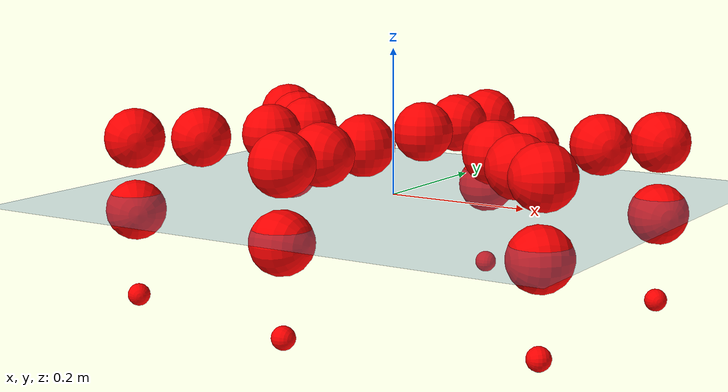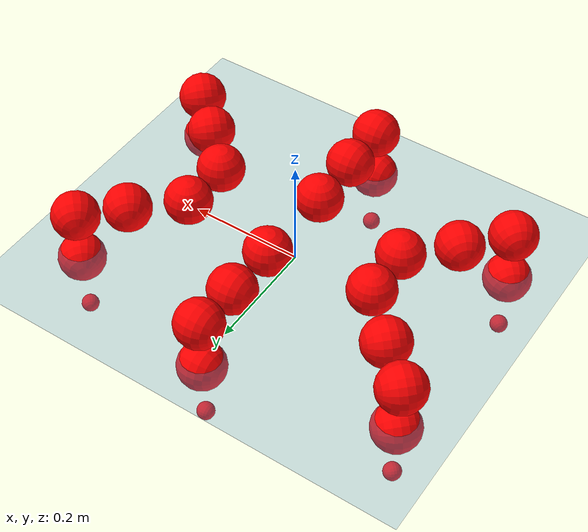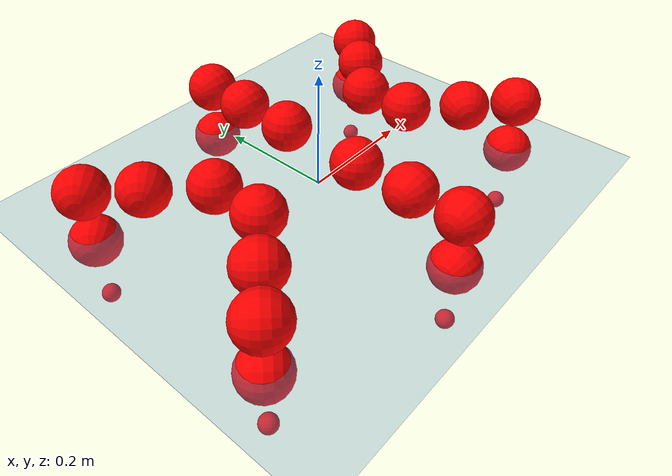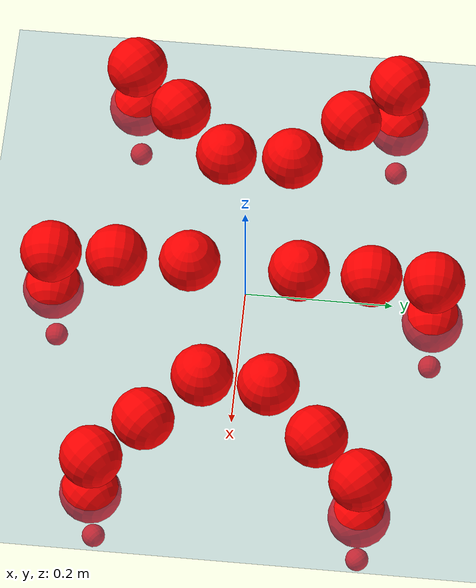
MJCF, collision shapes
<mujoco model="Golem">
  <compiler angle="radian" assetdir="assets" balanceinertia="true" inertiafromgeom="false"/>

  <option timestep="0.005" density="1.2" viscosity="2e-05"/>

  <size nkey="1"/>

  <visual>
    <quality shadowsize="8192"/>
    <map shadowclip="0.5"/>
  </visual>

  <default>
    <default class="/">
      <joint armature="0.01" damping="0.01" frictionloss="0.01"/>
      <geom contype="0" conaffinity="0" group="1" solref="-1000 -80"/>
      <site size="0.01 0.005 0.005" group="5"/>
      <general forcelimited="true" biastype="affine" gainprm="25" biasprm="0 -25 -0.5"/>
      <default class="visual">
        <geom type="mesh" group="2"/>
      </default>
      <default class="collision">
        <geom group="3"/>
      </default>
      <default class="foot">
        <geom size="0.01 0 0" condim="6" group="4" priority="1" solimp="0.015 1 0.01"/>
      </default>
      <default class="reward_collision_sphere">
        <geom group="5" rgba="1 0 0 1"/>
      </default>
    </default>
  </default>

  <asset>
    <texture type="skybox" colorspace="auto" name="//unnamed_texture_0" builtin="gradient" rgb1="0.95 0.95 0.95" rgb2="0.95 0.95 0.95" width="100" height="600"/>
    <texture type="2d" colorspace="auto" name="texplane" builtin="checker" rgb1="0.345 0.575 0.748" rgb2="0.345 0.575 0.748" markrgb="1 1 1" width="512" height="512"/>
    <material name="MatPlane" class="/" texture="texplane" texuniform="true" texrepeat="2 2" specular="0.9"/>
    <mesh name="body" class="/" file="body.stl" scale="0.001 0.001 0.001"/>
    <mesh name="coxa" class="/" file="coxa.stl" scale="0.001 0.001 0.001"/>
    <mesh name="femur" class="/" file="femur.stl" scale="0.001 0.001 0.001"/>
    <mesh name="tibia" class="/" file="tibia.stl" scale="0.001 0.001 0.001"/>
    <mesh name="tarsus" class="/" file="tarsus.stl" scale="0.001 0.001 0.001"/>
  </asset>

  <worldbody>
    <geom name="floor" class="/" size="100 100 0.125" type="plane" group="0" material="MatPlane"/>
    <light name="toplight_shadow" class="/" pos="0 0 5" dir="0.0990148 0.0990148 -0.990148" type="directional" ambient="0.04 0.04 0.04" diffuse="0.55 0.55 0.55" specular="0.12 0.12 0.12"/>
    <light name="toplight_fill" class="/" pos="0 0 5" dir="0.0990148 0.0990148 -0.990148" type="directional" castshadow="false" ambient="0.04 0.04 0.04" diffuse="0.3 0.3 0.3" specular="0.08 0.08 0.08"/>
    <body name="trunk" pos="0.00251644 0.0005847 0.000208939" quat="1 2.93596e-07 -3.37586e-05 -1.98366e-05">
      <inertial pos="-0.000603419 -0.0008184 -0.00186367" quat="0.999998 -0.00052493 -0.00102691 -0.00130902" mass="4.09084" diaginertia="0.0173083 0.00346044 0.0234034"/>
      <joint name="//unnamed_joint_0" type="free"/>
      <geom name="//unnamed_geom_1" class="/" pos="0 0 0.0759212" quat="1 0 0 0" type="mesh" rgba="0.9 0.9 0.9 1" mesh="body"/>
      <site name="imu" class="/" pos="0.157786 0.0111995 0.113408" size="0.0104095"/>
      <camera name="track" class="/" pos="0 -1.6268 0" quat="0.707107 0.707107 0 0" mode="trackcom"/>
      <camera name="ego_camera" class="/" pos="0.146012 0 0.118627" quat="-0.5 -0.5 0.5 0.5"/>
      <body name="coxa_RR" pos="-0.20041 -0.0670641 0.0751709" quat="0.382713 -0.000169662 -4.90544e-05 -0.923867">
        <inertial pos="0.000255835 -0.00254125 0.00102263" quat="0.999978 -0.00611622 -0.00193494 0.00193624" mass="0.216245" diaginertia="0.0174352 0.00346794 0.0227991"/>
        <joint name="coxa_joint_RR" class="/" pos="0 0 0" axis="-0.00329999 0.00460002 -0.999984" range="-3.14129 3.13384" armature="0.00943367" damping="0" frictionloss="0.0103461"/>
        <geom name="//unnamed_geom_2" class="/" type="mesh" rgba="0.2 0.2 0.2 1" mesh="coxa"/>
        <geom name="//unnamed_geom_3" class="reward_collision_sphere" size="0.0416378" pos="-0.0336951 0 0"/>
        <body name="femur_RR" pos="0.064376 0.000387926 -0.00190699" quat="0.50004 -0.499825 0.500148 0.499987">
          <inertial pos="0.000160703 0.000664518 -0.000126126" quat="0.999987 0.00167043 -9.4708e-05 -0.00485677" mass="0.224763" diaginertia="0.0178057 0.00349911 0.0241559"/>
          <joint name="femur_joint_RR" class="/" pos="0 0 0" axis="-5.52235e-05 0.00632919 -0.99998" range="-3.18366 3.11344" armature="0.0109453" damping="0.00466709" frictionloss="0.011459"/>
          <geom name="//unnamed_geom_4" class="/" type="mesh" rgba="0.9 0.9 0.9 1" mesh="femur"/>
          <geom name="//unnamed_geom_5" class="reward_collision_sphere" size="0.0416378"/>
          <body name="tibia_RR" pos="-0.00227808 -0.0908848 0.00297788" quat="0.000751591 0.999999 0.000548497 -0.000750949">
            <inertial pos="-0.00217791 0.00100093 -0.000514825" quat="0.999999 0.000775749 -0.00105873 0.000323283" mass="0.228667" diaginertia="0.0176761 0.00357844 0.0230665"/>
            <joint name="tibia_joint_RR" class="/" pos="0 0 0" axis="-0.00617983 -0.00686131 0.999957" range="-3.14741 3.15338" armature="0.0106664" damping="0.00187673" frictionloss="0.0103724"/>
            <geom name="//unnamed_geom_6" class="/" type="mesh" rgba="0.2 0.2 0.2 1" mesh="tibia"/>
            <geom name="//unnamed_geom_7" class="reward_collision_sphere" size="0.0416378"/>
            <body name="tarsus_RR" pos="0.0998852 0.000840044 0.00173998" quat="1 1.60752e-05 -7.80899e-06 -2.42875e-05">
              <inertial pos="0.0705175 0.000511856 -0.000261402" quat="0.501931 0.502012 0.500354 0.495677" mass="0.223872" diaginertia="0.0176276 0.00354514 0.0233643"/>
              <joint name="tarsus_joint_RR" class="/" pos="0 0 0" axis="0.000518606 -0.00054551 1" range="-3.18196 3.15756" armature="0.0109465" damping="0.0389451" frictionloss="0.0104944"/>
              <geom name="//unnamed_geom_8" class="/" type="mesh" rgba="0.9 0.9 0.9 1" mesh="tarsus"/>
              <geom name="foot_1" class="foot" size="0.0102976" pos="0.125795 0 0" quat="0 -0.707107 0 0.707107"/>
              <geom name="//unnamed_geom_10" class="reward_collision_sphere" size="0.0416378"/>
              <geom name="//unnamed_geom_11" class="reward_collision_sphere" size="0.0156142" pos="0.120741 0 0"/>
              <site name="foot_1" class="foot" pos="0.125795 0 0" quat="0 -0.707107 0 0.707107" size="0.0104095"/>
            </body>
          </body>
        </body>
      </body>
      <body name="coxa_RM" pos="-0.000762888 -0.109267 0.077181" quat="0.707141 -0.000464233 -5.70722e-05 -0.707072">
        <inertial pos="0.00160823 4.59758e-05 0.000904939" quat="0.999999 -0.000139527 0.000322883 0.00162552" mass="0.226215" diaginertia="0.0177927 0.00343683 0.023749"/>
        <joint name="coxa_joint_RM" class="/" pos="0 0 0" axis="-0.000171514 -0.0010372 -0.999999" range="-3.12323 3.12764" armature="0.0105736" damping="0.00253509" frictionloss="0.00905563"/>
        <geom name="//unnamed_geom_12" class="/" type="mesh" rgba="0.2 0.2 0.2 1" mesh="coxa"/>
        <geom name="//unnamed_geom_13" class="reward_collision_sphere" size="0.0416378" pos="-0.0336951 0 0"/>
        <body name="femur_RM" pos="0.0648774 0.00152843 0.00123766" quat="0.499898 -0.499404 0.499677 0.50102">
          <inertial pos="-0.000962507 0.000385082 -0.000198801" quat="0.99999 -0.000815776 0.000617175 -0.00432845" mass="0.231441" diaginertia="0.0184307 0.00358784 0.0241513"/>
          <joint name="femur_joint_RM" class="/" pos="0 0 0" axis="-0.00194562 0.00137172 -0.999997" range="-3.13191 3.13529" armature="0.0105126" damping="0.0165326" frictionloss="0.0104727"/>
          <geom name="//unnamed_geom_14" class="/" type="mesh" rgba="0.9 0.9 0.9 1" mesh="femur"/>
          <geom name="//unnamed_geom_15" class="reward_collision_sphere" size="0.0416378"/>
          <body name="tibia_RM" pos="-0.000393071 -0.0880644 0.00218775" quat="-0.00015199 1 -5.99833e-05 -8.02038e-05">
            <inertial pos="0.00124478 -0.00275294 0.000443302" quat="0.999934 0.00152194 -0.00855536 -0.00745418" mass="0.22163" diaginertia="0.0180802 0.00371416 0.0238674"/>
            <joint name="tibia_joint_RM" class="/" pos="0 0 0" axis="-0.000201255 -0.00321271 0.999995" range="-3.18577 3.19103" armature="0.0103908" damping="0.0158636" frictionloss="0.00990724"/>
            <geom name="//unnamed_geom_16" class="/" type="mesh" rgba="0.2 0.2 0.2 1" mesh="tibia"/>
            <geom name="//unnamed_geom_17" class="reward_collision_sphere" size="0.0416378"/>
            <body name="tarsus_RM" pos="0.097711 0.000577431 0.00147905" quat="1 2.83015e-06 -2.63016e-05 2.40754e-05">
              <inertial pos="0.066336 -0.000567168 0.00188557" quat="0.504286 0.494076 0.493353 0.508122" mass="0.233046" diaginertia="0.0173966 0.00353701 0.0229988"/>
              <joint name="tarsus_joint_RM" class="/" pos="0 0 0" axis="0.00151806 -0.00201102 0.999997" range="-3.12176 3.15916" armature="0.0101768" damping="0.00345165" frictionloss="0.0105703"/>
              <geom name="//unnamed_geom_18" class="/" type="mesh" rgba="0.9 0.9 0.9 1" mesh="tarsus"/>
              <geom name="foot_2" class="foot" size="0.0100269" pos="0.125795 0 0" quat="0 -0.707107 0 0.707107"/>
              <geom name="//unnamed_geom_20" class="reward_collision_sphere" size="0.0416378"/>
              <geom name="//unnamed_geom_21" class="reward_collision_sphere" size="0.0156142" pos="0.120741 0 0"/>
              <site name="foot_2" class="foot" pos="0.125795 0 0" quat="0 -0.707107 0 0.707107" size="0.0104095"/>
            </body>
          </body>
        </body>
      </body>
      <body name="coxa_RF" pos="0.199614 -0.0651013 0.0785865" quat="0.923875 8.28619e-06 -7.79966e-06 -0.382694">
        <inertial pos="0.00109043 0.000332869 0.000815642" quat="1 5.78901e-06 -0.000139632 1.96233e-05" mass="0.224528" diaginertia="0.017818 0.00350794 0.0235587"/>
        <joint name="coxa_joint_RF" class="/" pos="0 0 0" axis="0.00251 0.00283466 -0.999993" range="-3.12972 3.11808" armature="0.0114908" damping="0.00543279" frictionloss="0.0106857"/>
        <geom name="//unnamed_geom_22" class="/" type="mesh" rgba="0.2 0.2 0.2 1" mesh="coxa"/>
        <geom name="//unnamed_geom_23" class="reward_collision_sphere" size="0.0416378" pos="-0.0336951 0 0"/>
        <body name="femur_RF" pos="0.0667572 0.00080139 -0.00210769" quat="0.499691 -0.500245 0.500013 0.50005">
          <inertial pos="-0.000459181 -0.00112136 0.000647229" quat="0.999997 0.00219351 0.000737361 -0.00097543" mass="0.226188" diaginertia="0.0178733 0.00353811 0.024263"/>
          <joint name="femur_joint_RF" class="/" pos="0 0 0" axis="0.000250646 -0.000540259 -1" stiffness="0.000404087" range="-3.19075 3.11773" armature="0.00920094" damping="0.0106955" frictionloss="0.0113092"/>
          <geom name="//unnamed_geom_24" class="/" type="mesh" rgba="0.9 0.9 0.9 1" mesh="femur"/>
          <geom name="//unnamed_geom_25" class="reward_collision_sphere" size="0.0416378"/>
          <body name="tibia_RF" pos="-0.00235507 -0.0891981 0.00211407" quat="-0.000233829 1 0.000141483 0.000120528">
            <inertial pos="-0.00243337 -0.000386731 0.000912365" quat="1 -3.74124e-05 -8.4877e-05 7.09746e-05" mass="0.229791" diaginertia="0.0175447 0.00355663 0.0233903"/>
            <joint name="tibia_joint_RF" class="/" pos="0 0 0" axis="0.0106533 -0.00387242 0.999936" range="-3.11849 3.08683" armature="0.0108006" damping="0.0140427" frictionloss="0.0103459"/>
            <geom name="//unnamed_geom_26" class="/" type="mesh" rgba="0.2 0.2 0.2 1" mesh="tibia"/>
            <geom name="//unnamed_geom_27" class="reward_collision_sphere" size="0.0416378"/>
            <body name="tarsus_RF" pos="0.0969224 0.00214458 0.00259307" quat="0.999999 -0.000137258 0.00118617 -0.000465465">
              <inertial pos="0.0674476 -0.000771507 -6.58397e-05" quat="0.499383 0.501963 0.499809 0.49884" mass="0.225151" diaginertia="0.017768 0.00360495 0.0236943"/>
              <joint name="tarsus_joint_RF" class="/" pos="0 0 0" axis="0.00226831 -0.00696653 0.999973" range="-3.12593 3.15859" armature="0.0107427" damping="0.00511871" frictionloss="0.0104046"/>
              <geom name="//unnamed_geom_28" class="/" type="mesh" rgba="0.9 0.9 0.9 1" mesh="tarsus"/>
              <geom name="foot_3" class="foot" size="0.0109556" pos="0.125795 0 0" quat="0 -0.707107 0 0.707107"/>
              <geom name="//unnamed_geom_30" class="reward_collision_sphere" size="0.0416378"/>
              <geom name="//unnamed_geom_31" class="reward_collision_sphere" size="0.0156142" pos="0.120741 0 0"/>
              <site name="foot_3" class="foot" pos="0.125795 0 0" quat="0 -0.707107 0 0.707107" size="0.0104095"/>
            </body>
          </body>
        </body>
      </body>
      <body name="coxa_LR" pos="-0.202106 0.0707093 0.0752142" quat="0.382694 -5.10347e-05 -6.30709e-05 0.923875">
        <inertial pos="-0.00226677 -0.000364991 -0.00185373" quat="0.999917 0.00479451 -0.0119063 -0.000646512" mass="0.226254" diaginertia="0.0182657 0.00374211 0.0236136"/>
        <joint name="coxa_joint_LR" class="/" pos="0 0 0" axis="0.0142757 -0.00669067 -0.999876" stiffness="0.000809033" range="-3.11788 3.13656" armature="0.0101307" damping="0.0182791" frictionloss="0.00944164"/>
        <geom name="//unnamed_geom_32" class="/" type="mesh" rgba="0.2 0.2 0.2 1" mesh="coxa"/>
        <geom name="//unnamed_geom_33" class="reward_collision_sphere" size="0.0416378" pos="-0.0336951 0 0"/>
        <body name="femur_LR" pos="0.0694359 -0.00242199 -0.00280409" quat="0.500018 -0.50002 0.499976 0.499987">
          <inertial pos="0.000530012 0.000178382 -0.000553766" quat="0.999999 -0.00149467 0.000455321 -0.000347488" mass="0.225921" diaginertia="0.0178316 0.0036512 0.0233891"/>
          <joint name="femur_joint_LR" class="/" pos="0 0 0" axis="0.0012101 0.00456297 0.999989" range="-3.16081 3.12843" armature="0.00993843" damping="0.00972496" frictionloss="0.00905622"/>
          <geom name="//unnamed_geom_34" class="/" type="mesh" rgba="0.9 0.9 0.9 1" mesh="femur"/>
          <geom name="//unnamed_geom_35" class="reward_collision_sphere" size="0.0416378"/>
          <body name="tibia_LR" pos="-0.000645958 -0.088617 0.00117036" quat="0.000243268 0.999999 -0.000352515 0.00116313">
            <inertial pos="0.000217934 0.000756595 8.40382e-05" quat="0.999997 -0.00148254 -0.00100999 -0.001553" mass="0.222701" diaginertia="0.0179867 0.0036052 0.0234634"/>
            <joint name="tibia_joint_LR" class="/" pos="0 0 0" axis="-0.000235727 -0.0012006 -0.999999" range="-3.14147 3.10266" armature="0.0101972" damping="0.010552" frictionloss="0.0106644"/>
            <geom name="//unnamed_geom_36" class="/" type="mesh" rgba="0.2 0.2 0.2 1" mesh="tibia"/>
            <geom name="//unnamed_geom_37" class="reward_collision_sphere" size="0.0416378"/>
            <body name="tarsus_LR" pos="0.0978498 -0.000175403 0.00249646" quat="0.999999 0.000963289 0.000873618 -0.000201401">
              <inertial pos="0.0709265 0.000155058 -0.00243547" quat="0.499029 0.501042 0.499606 0.50032" mass="0.220258" diaginertia="0.0175916 0.00345224 0.0230561"/>
              <joint name="tarsus_joint_LR" class="/" pos="0 0 0" axis="0.00708239 0.00202569 -0.999973" stiffness="0.00113475" range="-3.18092 3.09766" armature="0.0105625" damping="0" frictionloss="0.00994488"/>
              <geom name="//unnamed_geom_38" class="/" type="mesh" rgba="0.9 0.9 0.9 1" mesh="tarsus"/>
              <geom name="foot_4" class="foot" size="0.0106311" pos="0.125795 0 0" quat="0.707107 0 -0.707107 0"/>
              <geom name="//unnamed_geom_40" class="reward_collision_sphere" size="0.0416378"/>
              <geom name="//unnamed_geom_41" class="reward_collision_sphere" size="0.0156142" pos="0.120741 0 0"/>
              <site name="foot_4" class="foot" pos="0.125795 0 0" quat="0.707107 0 -0.707107 0" size="0.0104095"/>
            </body>
          </body>
        </body>
      </body>
      <body name="coxa_LM" pos="0.00144805 0.10551 0.0775257" quat="0.707175 -8.02959e-05 4.62796e-05 0.707038">
        <inertial pos="-0.000819514 0.000821165 0.00082297" quat="0.999989 -0.00138891 0.00417599 0.00160323" mass="0.22781" diaginertia="0.0180112 0.00359643 0.0237143"/>
        <joint name="coxa_joint_LM" class="/" pos="0 0 0" axis="-0.0020586 -0.000952834 -0.999997" range="-3.09836 3.14899" armature="0.0102946" damping="0.00612939" frictionloss="0.0113613"/>
        <geom name="//unnamed_geom_42" class="/" type="mesh" rgba="0.2 0.2 0.2 1" mesh="coxa"/>
        <geom name="//unnamed_geom_43" class="reward_collision_sphere" size="0.0416378" pos="-0.0336951 0 0"/>
        <body name="femur_LM" pos="0.0638283 0.00039076 0.000952673" quat="0.500398 -0.500015 0.499821 0.499765">
          <inertial pos="-0.000264885 -0.00228169 0.00260574" quat="0.999922 0.00978443 -0.000723113 0.00779319" mass="0.222403" diaginertia="0.0176628 0.00339925 0.0229546"/>
          <joint name="femur_joint_LM" class="/" pos="0 0 0" axis="-0.0026172 0.0073074 0.99997" range="-3.13693 3.10172" armature="0.010637" damping="0.00516714" frictionloss="0.010338"/>
          <geom name="//unnamed_geom_44" class="/" type="mesh" rgba="0.9 0.9 0.9 1" mesh="femur"/>
          <geom name="//unnamed_geom_45" class="reward_collision_sphere" size="0.0416378"/>
          <body name="tibia_LM" pos="0.000712694 -0.0841913 -0.00170802" quat="0.000780141 0.999999 -0.00105764 0.000483062">
            <inertial pos="-0.000781789 -0.00337288 -0.000942713" quat="0.999987 0.004534 -0.000811403 -0.00225197" mass="0.228005" diaginertia="0.017667 0.00366433 0.0232172"/>
            <joint name="tibia_joint_LM" class="/" pos="0 0 0" axis="0.00466747 -0.00345235 -0.999983" range="-3.146 3.11912" armature="0.0115183" damping="0" frictionloss="0.0103139"/>
            <geom name="//unnamed_geom_46" class="/" type="mesh" rgba="0.2 0.2 0.2 1" mesh="tibia"/>
            <geom name="//unnamed_geom_47" class="reward_collision_sphere" size="0.0416378"/>
            <body name="tarsus_LM" pos="0.101665 0.000808318 0.000349933" quat="0.999999 -5.91149e-05 0.00130491 5.90988e-05">
              <inertial pos="0.0663536 0.000267386 -0.00011801" quat="0.499758 0.500039 0.500284 0.499919" mass="0.221397" diaginertia="0.017441 0.0034834 0.0231602"/>
              <joint name="tarsus_joint_LM" class="/" pos="0 0 0" axis="-0.00112999 -1.73457e-05 -0.999999" range="-3.087 3.11893" armature="0.0115884" damping="0" frictionloss="0.0100703"/>
              <geom name="//unnamed_geom_48" class="/" type="mesh" rgba="0.9 0.9 0.9 1" mesh="tarsus"/>
              <geom name="foot_5" class="foot" size="0.0102094" pos="0.125795 0 0" quat="0.707107 0 -0.707107 0"/>
              <geom name="//unnamed_geom_50" class="reward_collision_sphere" size="0.0416378"/>
              <geom name="//unnamed_geom_51" class="reward_collision_sphere" size="0.0156142" pos="0.120741 0 0"/>
              <site name="foot_5" class="foot" pos="0.125795 0 0" quat="0.707107 0 -0.707107 0" size="0.0104095"/>
            </body>
          </body>
        </body>
      </body>
      <body name="coxa_LF" pos="0.202439 0.0707622 0.0732759" quat="0.92388 -6.78701e-06 -7.93829e-06 0.382682">
        <inertial pos="-0.000188646 0.000599912 0.000926971" quat="0.999981 0.00138611 -0.000149824 -0.0060244" mass="0.217127" diaginertia="0.0174238 0.00343334 0.0228099"/>
        <joint name="coxa_joint_LF" class="/" pos="0 0 0" axis="0.00386619 -0.0020187 -0.99999" range="-3.13202 3.1898" armature="0.0115049" damping="0.00261119" frictionloss="0.00983213"/>
        <geom name="//unnamed_geom_52" class="/" type="mesh" rgba="0.2 0.2 0.2 1" mesh="coxa"/>
        <geom name="//unnamed_geom_53" class="reward_collision_sphere" size="0.0416378" pos="-0.0336951 0 0"/>
        <body name="femur_LF" pos="0.0672606 -0.00185638 0.000551803" quat="0.500839 -0.499539 0.499308 0.500313">
          <inertial pos="0.00254477 0.00036061 0.00051298" quat="0.999986 -0.000682313 -0.00350925 0.00383244" mass="0.230442" diaginertia="0.0181376 0.00361515 0.0235325"/>
          <joint name="femur_joint_LF" class="/" pos="0 0 0" axis="0.00029012 -0.00132891 0.999999" stiffness="0.000493787" range="-3.12349 3.1236" armature="0.0115681" damping="0.0138005" frictionloss="0.0109443"/>
          <geom name="//unnamed_geom_54" class="/" type="mesh" rgba="0.9 0.9 0.9 1" mesh="femur"/>
          <geom name="//unnamed_geom_55" class="reward_collision_sphere" size="0.0416378"/>
          <body name="tibia_LF" pos="0.000158157 -0.0859873 0.00194435" quat="-9.98665e-05 1 -6.28393e-05 -0.000288137">
            <inertial pos="0.00016011 0.00175632 -0.00046307" quat="0.999986 0.00347085 -0.00244543 -0.0031135" mass="0.226214" diaginertia="0.0181035 0.00357972 0.0235491"/>
            <joint name="tibia_joint_LF" class="/" pos="0 0 0" axis="-0.000372321 -0.00332685 -0.999994" range="-3.13633 3.14773" armature="0.00997121" damping="0" frictionloss="0.0104147"/>
            <geom name="//unnamed_geom_56" class="/" type="mesh" rgba="0.2 0.2 0.2 1" mesh="tibia"/>
            <geom name="//unnamed_geom_57" class="reward_collision_sphere" size="0.0416378"/>
            <body name="tarsus_LF" pos="0.0989522 0.000495639 -0.000194215" quat="0.999999 -0.000574439 -0.000780782 -0.000785732">
              <inertial pos="0.0696291 0.000918322 0.000200435" quat="0.501865 0.496121 0.497069 0.504894" mass="0.223209" diaginertia="0.0177469 0.00359473 0.0231701"/>
              <joint name="tarsus_joint_LF" class="/" pos="0 0 0" axis="-0.00102755 0.00127558 -0.999999" stiffness="0.0301875" range="-3.17226 3.13449" armature="0.0103633" damping="0.0306248" frictionloss="0.0101516"/>
              <geom name="//unnamed_geom_58" class="/" type="mesh" rgba="0.9 0.9 0.9 1" mesh="tarsus"/>
              <geom name="foot_6" class="foot" size="0.0105217" pos="0.125795 0 0" quat="0.707107 0 -0.707107 0"/>
              <geom name="//unnamed_geom_60" class="reward_collision_sphere" size="0.0416378"/>
              <geom name="//unnamed_geom_61" class="reward_collision_sphere" size="0.0156142" pos="0.120741 0 0"/>
              <site name="foot_6" class="foot" pos="0.125795 0 0" quat="0.707107 0 -0.707107 0" size="0.0104095"/>
            </body>
          </body>
        </body>
      </body>
    </body>
  </worldbody>

  <contact>
    <pair class="/" geom1="floor" geom2="foot_1" name="//unnamed_contact_0"/>
    <pair class="/" geom1="floor" geom2="foot_2" name="//unnamed_contact_1"/>
    <pair class="/" geom1="floor" geom2="foot_3" name="//unnamed_contact_2"/>
    <pair class="/" geom1="floor" geom2="foot_4" name="//unnamed_contact_3"/>
    <pair class="/" geom1="floor" geom2="foot_5" name="//unnamed_contact_4"/>
    <pair class="/" geom1="floor" geom2="foot_6" name="//unnamed_contact_5"/>
  </contact>

  <actuator>
    <general name="coxa_joint_RR" class="/" joint="coxa_joint_RR" forcerange="-7.65988 7.65988" gainprm="24.9458" biasprm="0 -24.9458 -0.562216"/>
    <general name="femur_joint_RR" class="/" joint="femur_joint_RR" forcerange="-7.56983 7.56983" gainprm="24.9458" biasprm="0 -24.9458 -0.562216"/>
    <general name="tibia_joint_RR" class="/" joint="tibia_joint_RR" forcerange="-7.50895 7.50895" gainprm="24.9458" biasprm="0 -24.9458 -0.562216"/>
    <general name="tarsus_joint_RR" class="/" joint="tarsus_joint_RR" forcerange="-8.06733 8.06733" gainprm="24.9458" biasprm="0 -24.9458 -0.562216"/>
    <general name="coxa_joint_RM" class="/" joint="coxa_joint_RM" forcerange="-6.86653 6.86653" gainprm="24.9458" biasprm="0 -24.9458 -0.562216"/>
    <general name="femur_joint_RM" class="/" joint="femur_joint_RM" forcerange="-7.83073 7.83073" gainprm="24.9458" biasprm="0 -24.9458 -0.562216"/>
    <general name="tibia_joint_RM" class="/" joint="tibia_joint_RM" forcerange="-7.38472 7.38472" gainprm="24.9458" biasprm="0 -24.9458 -0.562216"/>
    <general name="tarsus_joint_RM" class="/" joint="tarsus_joint_RM" forcerange="-7.68888 7.68888" gainprm="24.9458" biasprm="0 -24.9458 -0.562216"/>
    <general name="coxa_joint_RF" class="/" joint="coxa_joint_RF" forcerange="-6.89756 6.89756" gainprm="24.9458" biasprm="0 -24.9458 -0.562216"/>
    <general name="femur_joint_RF" class="/" joint="femur_joint_RF" forcerange="-7.51486 7.51486" gainprm="24.9458" biasprm="0 -24.9458 -0.562216"/>
    <general name="tibia_joint_RF" class="/" joint="tibia_joint_RF" forcerange="-6.8587 6.8587" gainprm="24.9458" biasprm="0 -24.9458 -0.562216"/>
    <general name="tarsus_joint_RF" class="/" joint="tarsus_joint_RF" forcerange="-7.62342 7.62342" gainprm="24.9458" biasprm="0 -24.9458 -0.562216"/>
    <general name="coxa_joint_LR" class="/" joint="coxa_joint_LR" forcerange="-7.62627 7.62627" gainprm="24.9458" biasprm="0 -24.9458 -0.562216"/>
    <general name="femur_joint_LR" class="/" joint="femur_joint_LR" forcerange="-7.74554 7.74554" gainprm="24.9458" biasprm="0 -24.9458 -0.562216"/>
    <general name="tibia_joint_LR" class="/" joint="tibia_joint_LR" forcerange="-7.45571 7.45571" gainprm="24.9458" biasprm="0 -24.9458 -0.562216"/>
    <general name="tarsus_joint_LR" class="/" joint="tarsus_joint_LR" forcerange="-7.35258 7.35258" gainprm="24.9458" biasprm="0 -24.9458 -0.562216"/>
    <general name="coxa_joint_LM" class="/" joint="coxa_joint_LM" forcerange="-8.16507 8.16507" gainprm="24.9458" biasprm="0 -24.9458 -0.562216"/>
    <general name="femur_joint_LM" class="/" joint="femur_joint_LM" forcerange="-7.63099 7.63099" gainprm="24.9458" biasprm="0 -24.9458 -0.562216"/>
    <general name="tibia_joint_LM" class="/" joint="tibia_joint_LM" forcerange="-7.49104 7.49104" gainprm="24.9458" biasprm="0 -24.9458 -0.562216"/>
    <general name="tarsus_joint_LM" class="/" joint="tarsus_joint_LM" forcerange="-7.75349 7.75349" gainprm="24.9458" biasprm="0 -24.9458 -0.562216"/>
    <general name="coxa_joint_LF" class="/" joint="coxa_joint_LF" forcerange="-6.85601 6.85601" gainprm="24.9458" biasprm="0 -24.9458 -0.562216"/>
    <general name="femur_joint_LF" class="/" joint="femur_joint_LF" forcerange="-7.61048 7.61048" gainprm="24.9458" biasprm="0 -24.9458 -0.562216"/>
    <general name="tibia_joint_LF" class="/" joint="tibia_joint_LF" forcerange="-7.33294 7.33294" gainprm="24.9458" biasprm="0 -24.9458 -0.562216"/>
    <general name="tarsus_joint_LF" class="/" joint="tarsus_joint_LF" forcerange="-7.50179 7.50179" gainprm="24.9458" biasprm="0 -24.9458 -0.562216"/>
  </actuator>

  <sensor>
    <gyro site="imu" name="imu_angular_velocity"/>
    <velocimeter site="imu" name="imu_linear_velocity"/>
    <framelinvel objtype="site" objname="foot_1" name="foot_1_global_linear_velocity"/>
    <framelinvel objtype="site" objname="foot_2" name="foot_2_global_linear_velocity"/>
    <framelinvel objtype="site" objname="foot_3" name="foot_3_global_linear_velocity"/>
    <framelinvel objtype="site" objname="foot_4" name="foot_4_global_linear_velocity"/>
    <framelinvel objtype="site" objname="foot_5" name="foot_5_global_linear_velocity"/>
    <framelinvel objtype="site" objname="foot_6" name="foot_6_global_linear_velocity"/>
  </sensor>

  <keyframe>
    <key name="home" qpos="0 0 0.1457 1 0 0 0 0 0 0 0 0 0 0 0 0 0 0 0 0 0 0 0 0 0 0 0 0 0 0 0"/>
  </keyframe>
</mujoco>
